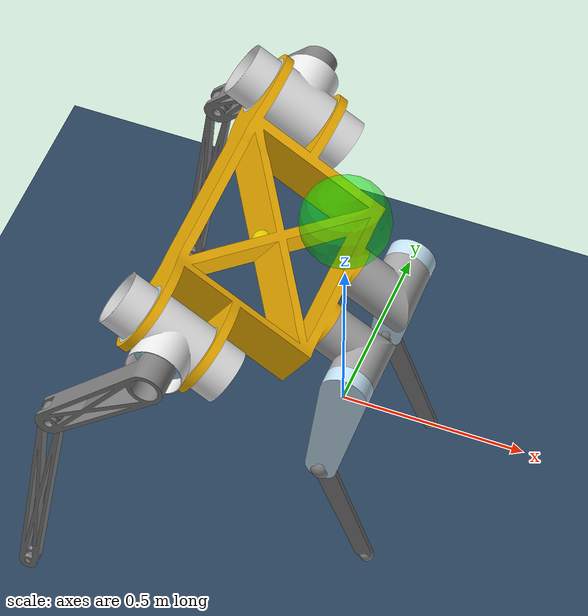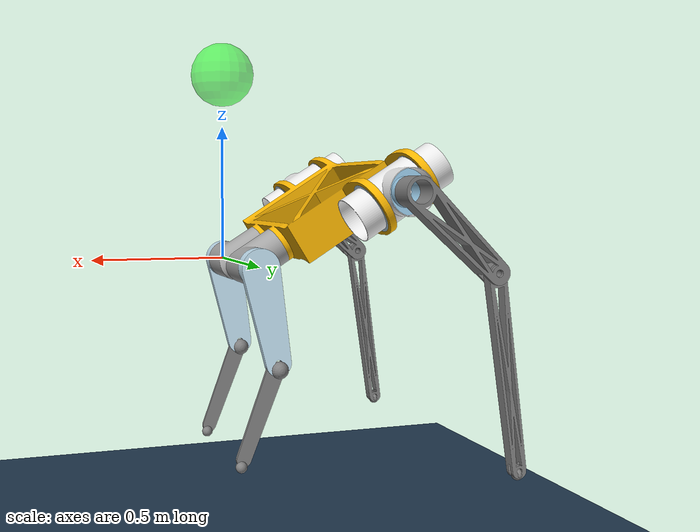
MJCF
<mujoco model="MuJoCo Model">
  <compiler angle="radian" meshdir="assets/"/>

  <option integrator="implicit"/>

  <size memory="4M" nkey="1" nuser_sensor="5"/>

  <visual>
    <global azimuth="160" elevation="-20"/>
    <quality shadowsize="2048"/>
    <headlight ambient="0.3 0.3 0.3" diffuse="0.6 0.6 0.6" specular="0 0 0"/>
    <rgba haze="0.15 0.25 0.35 1"/>
  </visual>

  <default>
    <default class="pterosaur">
      <joint armature="0.005" frictionloss="0.1"/>
      <default class="visual">
        <geom type="mesh" contype="0" conaffinity="0" group="2"/>
      </default>
      <default class="collision">
        <geom group="3"/>
      </default>
      <default class="foot">
        <geom size="0.02 0 0" contype="2" condim="6" priority="1" friction="1.2 0.02 0.01" solimp="0.015 1 0.031"/>
      </default>
    </default>
    <default class="torque">
      <general ctrlrange="-1 1" ctrllimited="true" gainprm="40"/>
    </default>
    <default class="task">
      <site size="0.02 0.005 0.005" group="5" rgba="1 0 0 1"/>
      <default class="flight">
        <site size="0.019 0.005 0.005" rgba="1 0.3 0.3 1"/>
      </default>
      <default class="stance">
        <site size="0.018 0.005 0.005" group="4" rgba="0.3 1 0.3 1"/>
      </default>
    </default>
    <default class="prop">
      <geom type="box" rgba="0 0.4 1 1"/>
    </default>
  </default>

  <asset>
    <texture type="2d" colorspace="auto" name="blue_grid" builtin="checker" mark="edge" rgb1="0.02 0.14 0.44" rgb2="0.27 0.55 1" markrgb="1 1 1" width="300" height="300"/>
    <texture type="2d" colorspace="auto" name="grey_grid" builtin="checker" mark="edge" rgb1="0.26 0.26 0.26" rgb2="0.6 0.6 0.6" markrgb="1 1 1" width="300" height="300"/>
    <texture type="skybox" colorspace="auto" name="skybox" builtin="gradient" rgb1="0.66 0.79 1" rgb2="0.9 0.91 0.93" width="800" height="4800"/>
    <texture type="skybox" colorspace="auto" builtin="gradient" rgb1="0.3 0.5 0.7" rgb2="0 0 0" width="512" height="3072"/>
    <texture type="2d" colorspace="auto" name="groundplane" builtin="checker" mark="edge" rgb1="0.2 0.3 0.4" rgb2="0.1 0.2 0.3" markrgb="0.8 0.8 0.8" width="300" height="300"/>
    <material name="blue_grid" texture="blue_grid" texuniform="true" reflectance="0.2"/>
    <material name="grey_grid" texture="grey_grid" texuniform="true" reflectance="0.2"/>
    <material name="self" rgba="0.7 0.5 0.3 1"/>
    <material name="self_default" rgba="0.7 0.5 0.3 1"/>
    <material name="self_highlight" rgba="0 0.5 0.3 1"/>
    <material name="effector" rgba="0.7 0.4 0.2 1"/>
    <material name="effector_default" rgba="0.7 0.4 0.2 1"/>
    <material name="effector_highlight" rgba="0 0.5 0.3 1"/>
    <material name="decoration" rgba="0.2 0.6 0.3 1"/>
    <material name="eye" rgba="0 0.2 1 1"/>
    <material name="target" rgba="0.6 0.3 0.3 1"/>
    <material name="target_default" rgba="0.6 0.3 0.3 1"/>
    <material name="target_highlight" rgba="0.6 0.3 0.3 0.4"/>
    <material name="site" rgba="0.5 0.5 0.5 0.3"/>
    <material name="body_material" rgba="0.980392 0.713725 0.00392157 1"/>
    <material name="housing_bearing_material" rgba="0.768627 0.886275 0.952941 1"/>
    <material name="smaller_housing_material" rgba="0.917647 0.917647 0.917647 1"/>
    <material name="humerus_material" rgba="0.498039 0.498039 0.498039 1"/>
    <material name="bevel_out_material" rgba="0.615686 0.811765 0.929412 1"/>
    <material name="radius_and_ulna_material" rgba="0.498039 0.498039 0.498039 1"/>
    <material name="finger_material" rgba="0.980392 0.713725 0.00392157 1"/>
    <material name="hip_material" rgba="0.647059 0.647059 0.647059 1"/>
    <material name="leg_motor_1_material" rgba="0.615686 0.811765 0.929412 1"/>
    <material name="femur_material" rgba="0.768627 0.886275 0.952941 1"/>
    <material name="leg_motor_3_material" rgba="0.917647 0.917647 0.917647 1"/>
    <material name="leg_motor_2_material" rgba="0.231373 0.380392 0.705882 1"/>
    <material name="tibia_material" rgba="0.498039 0.498039 0.498039 1"/>
    <material name="groundplane" texture="groundplane" texrepeat="5 5" texuniform="true" reflectance="0.2"/>
    <mesh name="femur" file="femur.stl"/>
    <mesh name="hip" file="hip.stl"/>
    <mesh name="housing_bearing" file="housing_bearing.stl"/>
    <mesh name="smaller_housing" file="smaller_housing.stl"/>
    <mesh name="finger" file="finger.stl"/>
    <mesh name="body" file="body.stl"/>
    <mesh name="humerus" file="humerus.stl"/>
    <mesh name="tibia" file="tibia.stl"/>
    <mesh name="radius_and_ulna" file="radius_and_ulna.stl"/>
    <mesh name="bevel_out" file="bevel_out.stl"/>
    <mesh name="leg_motor_2" file="leg_motor_2.stl"/>
    <mesh name="leg_motor_1" file="leg_motor_1.stl"/>
    <mesh name="leg_motor_3" file="leg_motor_3.stl"/>
  </asset>

  <worldbody>
    <geom name="floor" size="0 0 0.05" pos="0 0 -1" type="plane" conaffinity="3" material="groundplane"/>
    <light pos="0 0 3.5" type="directional"/>
    <body name="body" childclass="pterosaur">
      <inertial pos="-0.329162 0.2607 0.205848" quat="0.618511 0.618511 -0.342701 0.342701" mass="21.9159" diaginertia="1.82175 1.36685 0.542959"/>
      <joint name="body_freejoint" type="free" armature="0" frictionloss="0"/>
      <geom name="height_probe_visual" size="0.03" pos="-0.329162 0.2607 0.205848" contype="0" conaffinity="0" group="2" rgba="1 1 0 0.6"/>
      <geom class="visual" pos="-1.16424 0.2607 0.72808" quat="0.618511 -0.342701 -0.342701 0.618511" material="body_material" mesh="body"/>
      <geom class="collision" pos="-1.16424 0.2607 0.72808" quat="0.618511 -0.342701 -0.342701 0.618511" type="mesh" material="body_material" mesh="body"/>
      <geom class="visual" pos="-1.16424 0.2607 0.72808" quat="0.618511 -0.342701 -0.342701 0.618511" material="housing_bearing_material" mesh="housing_bearing"/>
      <geom class="collision" pos="-1.16424 0.2607 0.72808" quat="0.618511 -0.342701 -0.342701 0.618511" type="mesh" material="housing_bearing_material" mesh="housing_bearing"/>
      <geom class="visual" pos="-1.31895 1.12179 0.824836" quat="0.618511 -0.342701 -0.342701 0.618511" material="housing_bearing_material" mesh="housing_bearing"/>
      <geom class="collision" pos="-1.31895 1.12179 0.824836" quat="0.618511 -0.342701 -0.342701 0.618511" type="mesh" material="housing_bearing_material" mesh="housing_bearing"/>
      <geom class="visual" pos="-1.31895 0.2607 0.824836" quat="0.618511 -0.342701 -0.342701 0.618511" material="housing_bearing_material" mesh="housing_bearing"/>
      <geom class="collision" pos="-1.31895 0.2607 0.824836" quat="0.618511 -0.342701 -0.342701 0.618511" type="mesh" material="housing_bearing_material" mesh="housing_bearing"/>
      <geom class="visual" pos="-1.16424 1.12179 0.72808" quat="0.618511 -0.342701 -0.342701 0.618511" material="housing_bearing_material" mesh="housing_bearing"/>
      <geom class="collision" pos="-1.16424 1.12179 0.72808" quat="0.618511 -0.342701 -0.342701 0.618511" type="mesh" material="housing_bearing_material" mesh="housing_bearing"/>
      <site name="com" size="0.001" pos="-0.329162 0.2607 0.205848" rgba="1 0 0 1"/>
      <site name="head" class="task" pos="-0.029162 0.2607 0.205848"/>
      <body name="smaller_housing" pos="-0.342251 -0.169846 0.214034" quat="0.484652 0 0.874707 0">
        <inertial pos="-1.24807e-06 0.00682513 -0.0787398" quat="0.707128 -1.57178e-06 -7.81234e-06 0.707086" mass="1.343" diaginertia="0.013795 0.0135155 0.00927768"/>
        <joint name="leftarm_shoulder1" range="-2.30808 0.293118" limited="true"/>
        <geom class="visual" pos="0.430546 0 -0.969486" quat="0 1 0 0" material="smaller_housing_material" mesh="smaller_housing"/>
        <body name="bevel_out" pos="0 -0.0762 -0.07874" quat="0.0909266 0.0909266 -0.701236 0.701236">
          <inertial pos="-0.0753731 0 0.0347345" quat="0.43073 0.560778 0.560778 0.43073" mass="4.75962" diaginertia="0.0797297 0.0796501 0.0108048"/>
          <joint name="leftarm_shoulder2" range="-1.73025 1.55614" limited="true"/>
          <geom class="visual" pos="0.430546 -0.890746 -0.0762" quat="0.707107 0.707107 0 0" material="humerus_material" mesh="humerus"/>
          <geom class="collision" pos="0.430546 -0.890746 -0.0762" quat="0.707107 0.707107 0 0" type="mesh" material="humerus_material" mesh="humerus"/>
          <geom class="visual" pos="0.430546 -0.890746 -0.0762" quat="0.707107 0.707107 0 0" material="bevel_out_material" mesh="bevel_out"/>
          <body name="radius_and_ulna" pos="-0.381 0 0.1016" quat="0.943004 0 0 0.332781">
            <inertial pos="-0.306294 0 -0.01905" quat="0 0.707107 0 0.707107" mass="1.60866" diaginertia="0.0697199 0.0693551 0.000762134"/>
            <joint name="leftarm_elbow" range="-0.7423 1.53233" limited="true"/>
            <geom class="visual" pos="0.811546 -0.890746 -0.1778" quat="0.707107 0.707107 0 0" material="radius_and_ulna_material" mesh="radius_and_ulna"/>
            <geom class="collision" pos="0.811546 -0.890746 -0.1778" quat="0.707107 0.707107 0 0" type="mesh" material="radius_and_ulna_material" mesh="radius_and_ulna"/>
            <geom name="FL" size="0.02" pos="-0.675 0 -0.02" contype="2" condim="6" priority="1" friction="1 0.02 0.01" solref="0.0067 3"/>
            <site name="FL" size="0.02" pos="-0.675 0 -0.02"/>
          </body>
        </body>
      </body>
      <body name="smaller_housing_2" pos="-0.342251 0.691246 0.214034" quat="0 0.874707 0 0.484652">
        <inertial pos="-1.24807e-06 0.00682513 -0.0787398" quat="0.707128 -1.57178e-06 -7.81234e-06 0.707086" mass="1.343" diaginertia="0.013795 0.0135155 0.00927768"/>
        <joint name="rightarm_shoulder1" range="-0.295388 2.30617" limited="true"/>
        <geom class="visual" pos="0.430546 0 -0.969486" quat="0 1 0 0" material="smaller_housing_material" mesh="smaller_housing"/>
        <body name="bevel_out_2" pos="0 -0.0762 -0.07874" quat="0.707107 -0.707107 0 0">
          <inertial pos="-0.0728804 0.0192235 -0.0347345" quat="0.62822 0.482551 0.371755 0.484027" mass="4.75962" diaginertia="0.0797297 0.0796501 0.0108049"/>
          <joint name="rightarm_shoulder2" range="-1.73159 1.55314" limited="true"/>
          <geom class="visual" pos="0.643487 0.751481 0.0762" quat="0.701236 -0.701236 0.0909266 -0.0909266" material="humerus_material" mesh="humerus"/>
          <geom class="collision" pos="0.643487 0.751481 0.0762" quat="0.701236 -0.701236 0.0909266 -0.0909266" type="mesh" material="humerus_material" mesh="humerus"/>
          <geom class="visual" pos="-0.751481 0.643487 0.0762" quat="0.560144 -0.560144 -0.431554 0.431554" material="bevel_out_material" mesh="bevel_out"/>
          <body name="radius_and_ulna_2" pos="-0.3684 0.0971719 -0.0635" quat="0.977967 0 0 0.208758">
            <inertial pos="-0.306294 0 -0.01905" quat="0 0.707107 0 0.707107" mass="1.60866" diaginertia="0.0697199 0.0693551 0.000762134"/>
            <joint name="rightarm_elbow" range="-0.7369 1.53357" limited="true"/>
            <geom class="visual" pos="0.811546 -0.890746 -0.1778" quat="0.707107 0.707107 0 0" material="radius_and_ulna_material" mesh="radius_and_ulna"/>
            <geom class="collision" pos="0.811546 -0.890746 -0.1778" quat="0.707107 0.707107 0 0" type="mesh" material="radius_and_ulna_material" mesh="radius_and_ulna"/>
            <geom name="FR" size="0.02" pos="-0.675 0 -0.02" contype="2" condim="6" priority="1" friction="1 0.02 0.01" solref="0.0067 3"/>
            <site name="FR" size="0.02" pos="-0.675 0 -0.02"/>
          </body>
        </body>
      </body>
      <body name="leg_motor_1" pos="-0.124306 0.1575 0.0777372" quat="0.618511 -0.342701 -0.342701 0.618511">
        <inertial pos="-0.0085028 -1.1347e-08 -0.0878363" quat="0.704254 0.0634614 0.0634616 0.704252" mass="2.7422" diaginertia="0.0181836 0.0169596 0.00916813"/>
        <joint name="leftleg_hip1" range="-0.327376 0.381876" limited="true"/>
        <geom class="visual" pos="0.1032 0 1.22654" quat="1 0 0 0" material="hip_material" mesh="hip"/>
        <geom class="collision" pos="0.1032 0 1.22654" quat="1 0 0 0" type="mesh" material="hip_material" mesh="hip"/>
        <geom class="visual" pos="0.1032 0 1.22654" quat="1 0 0 0" material="leg_motor_1_material" mesh="leg_motor_1"/>
        <geom class="collision" pos="0.1032 0 1.22654" quat="1 0 0 0" type="mesh" material="leg_motor_1_material" mesh="leg_motor_1"/>
        <body name="leg_motor_2" pos="-0.1075 0 -0.146612" quat="0.399172 -0.583663 -0.399172 0.583663">
          <inertial pos="0.0727822 0 0.0216101" quat="0 0.6709 0 0.741548" mass="3.21492" diaginertia="0.0416266 0.0395144 0.00417972"/>
          <joint name="leftleg_hip2" range="-1.29 1.72115" limited="true"/>
          <geom class="visual" pos="0 -1.37315 -0.2107" quat="0.5 0.5 0.5 -0.5" material="femur_material" mesh="femur"/>
          <geom class="collision" pos="0 -1.37315 -0.2107" quat="0.5 0.5 0.5 -0.5" type="mesh" material="femur_material" mesh="femur"/>
          <geom class="visual" pos="0 -1.37315 -0.2107" quat="0.5 0.5 0.5 -0.5" material="leg_motor_3_material" mesh="leg_motor_3"/>
          <geom class="collision" pos="0 -1.37315 -0.2107" quat="0.5 0.5 0.5 -0.5" type="mesh" material="leg_motor_3_material" mesh="leg_motor_3"/>
          <geom class="visual" pos="0 -1.37315 -0.2107" quat="0.5 0.5 0.5 -0.5" material="leg_motor_2_material" mesh="leg_motor_2"/>
          <geom class="collision" pos="0 -1.37315 -0.2107" quat="0.5 0.5 0.5 -0.5" type="mesh" material="leg_motor_2_material" mesh="leg_motor_2"/>
          <geom name="LK_visual" size="0.03" pos="0.353 0 0.033" rgba="0 1 1 0.3"/>
          <geom name="LK" size="0.03" pos="0.353 0 0.033" contype="2" condim="6" priority="1" friction="1 0.02 0.01" solimp="0.015 1 0.031"/>
          <site name="LK" size="0.03" pos="0.353 0 0.033"/>
          <body name="tibia" pos="0.3302 0 0.03115" quat="0 0.962486 0.271331 0">
            <inertial pos="0.164731 0 -0.00635" quat="0 0.707107 0 0.707107" mass="0.440746" diaginertia="0.00548761 0.00537275 0.000126716"/>
            <joint name="leftleg_knee" range="-1.6531 0.481906" limited="true"/>
            <geom name="HL" class="foot" pos="0.3681 0 0" solref="0.0067 3" solimp="0.9 0.95 0.001"/>
            <geom class="visual" pos="-0.3302 1.37315 0.24185" quat="0.5 -0.5 -0.5 -0.5" material="tibia_material" mesh="tibia"/>
            <geom class="collision" pos="-0.3302 1.37315 0.24185" quat="0.5 -0.5 -0.5 -0.5" type="mesh" material="tibia_material" mesh="tibia"/>
            <site name="RL" size="0.02" pos="0.3681 0 0"/>
          </body>
        </body>
      </body>
      <body name="hip" pos="-0.124306 0.3639 0.0777372" quat="0.618511 -0.342701 -0.342701 0.618511">
        <inertial pos="0.0085028 1.1347e-08 -0.0878363" quat="0.704254 -0.0634614 -0.0634616 0.704252" mass="2.7422" diaginertia="0.0181836 0.0169596 0.00916813"/>
        <joint name="rightleg_hip1" range="-0.328164 0.346007" limited="true"/>
        <geom class="visual" pos="0.1032 0 1.22654" quat="1 0 0 0" material="leg_motor_1_material" mesh="leg_motor_1"/>
        <geom class="collision" pos="0.1032 0 1.22654" quat="1 0 0 0" type="mesh" material="leg_motor_1_material" mesh="leg_motor_1"/>
        <geom class="visual" pos="-0.1032 0 1.22654" quat="0 0 0 1" material="hip_material" mesh="hip"/>
        <geom class="collision" pos="-0.1032 0 1.22654" quat="0 0 0 1" type="mesh" material="hip_material" mesh="hip"/>
        <body name="femur" pos="0.1075 0 -0.146612" quat="0.5 0.5 -0.5 -0.5">
          <inertial pos="-0.0678277 -0.0263943 -0.0216101" quat="-0.13681 0.659383 0.123774 0.728819" mass="3.21492" diaginertia="0.0416266 0.0395144 0.00417975"/>
          <joint name="rightleg_hip2" range="-1.29 1.69754" limited="true"/>
          <geom class="visual" pos="-0.497971 1.27968 0.2107" quat="0.583663 -0.399172 -0.583663 -0.399172" material="leg_motor_2_material" mesh="leg_motor_2"/>
          <geom class="collision" pos="-0.497971 1.27968 0.2107" quat="0.583663 -0.399172 -0.583663 -0.399172" type="mesh" material="leg_motor_2_material" mesh="leg_motor_2"/>
          <geom class="visual" pos="0.497971 -1.27968 0.2107" quat="0.399172 0.583663 -0.399172 0.583663" material="femur_material" mesh="femur"/>
          <geom class="collision" pos="0.497971 -1.27968 0.2107" quat="0.399172 0.583663 -0.399172 0.583663" type="mesh" material="femur_material" mesh="femur"/>
          <geom class="visual" pos="-0.497971 1.27968 0.2107" quat="0.583663 -0.399172 -0.583663 -0.399172" material="leg_motor_3_material" mesh="leg_motor_3"/>
          <geom class="collision" pos="-0.497971 1.27968 0.2107" quat="0.583663 -0.399172 -0.583663 -0.399172" type="mesh" material="leg_motor_3_material" mesh="leg_motor_3"/>
          <geom name="RK_visual" size="0.03" pos="-0.329 -0.128 -0.047" rgba="0 1 1 0.3"/>
          <geom name="RK" size="0.03" pos="-0.329 -0.128 -0.047" contype="2" condim="6" priority="1" friction="1 0.02 0.01" solimp="0.015 1 0.031"/>
          <site name="RK" size="0.03" pos="-0.329 -0.128 -0.047"/>
          <body name="tibia_2" pos="-0.307722 -0.119746 -0.04385" quat="0 0.444243 -0.895906 0">
            <inertial pos="0.164731 0 -0.00635" quat="0 0.707107 0 0.707107" mass="0.440746" diaginertia="0.00548761 0.00537275 0.000126716"/>
            <joint name="rightleg_knee" range="-1.66929 0.456623" limited="true"/>
            <geom name="HR" class="foot" pos="0.3681 0 0" solref="0.0067 3" solimp="0.9 0.95 0.001"/>
            <geom class="visual" pos="-0.3302 -1.37315 -0.25455" quat="0.5 0.5 0.5 -0.5" material="tibia_material" mesh="tibia"/>
            <geom class="collision" pos="-0.3302 -1.37315 -0.25455" quat="0.5 0.5 0.5 -0.5" type="mesh" material="tibia_material" mesh="tibia"/>
            <site name="RR" size="0.02" pos="0.3681 0 0"/>
          </body>
        </body>
      </body>
    </body>
    <body name="goal" pos="0 0 0.7" mocap="true">
      <geom size="0.12" contype="0" conaffinity="0" group="2" rgba="0 1 0 0.5"/>
    </body>
  </worldbody>

  <contact>
    <exclude body1="body" body2="bevel_out"/>
    <exclude body1="body" body2="bevel_out_2"/>
    <exclude body1="body" body2="leg_motor_2"/>
    <exclude body1="body" body2="femur"/>
  </contact>

  <tendon>
    <fixed name="left_shoulder_diff_A">
      <joint joint="leftarm_shoulder2" coef="1"/>
      <joint joint="leftarm_shoulder1" coef="1"/>
    </fixed>
    <fixed name="left_shoulder_diff_B">
      <joint joint="leftarm_shoulder2" coef="1"/>
      <joint joint="leftarm_shoulder1" coef="-1"/>
    </fixed>
    <fixed name="right_shoulder_diff_A">
      <joint joint="rightarm_shoulder2" coef="1"/>
      <joint joint="rightarm_shoulder1" coef="-1"/>
    </fixed>
    <fixed name="right_shoulder_diff_B">
      <joint joint="rightarm_shoulder2" coef="1"/>
      <joint joint="rightarm_shoulder1" coef="1"/>
    </fixed>
  </tendon>

  <actuator>
    <general name="leftarm_shoulder1" class="pterosaur" tendon="left_shoulder_diff_A" ctrlrange="-1 1" ctrllimited="true" forcelimited="true" forcerange="-200 200" biastype="affine" gainprm="200" biasprm="0 0 -10"/>
    <general name="leftarm_shoulder2" class="pterosaur" tendon="left_shoulder_diff_B" ctrlrange="-1 1" ctrllimited="true" forcelimited="true" forcerange="-200 200" biastype="affine" gainprm="200" biasprm="0 0 -10"/>
    <general name="leftarm_elbow" class="pterosaur" joint="leftarm_elbow" ctrlrange="-1 1" ctrllimited="true" forcelimited="true" forcerange="-80 80" biastype="affine" gainprm="80" biasprm="0 0 -4"/>
    <general name="rightarm_shoulder1" class="pterosaur" tendon="right_shoulder_diff_A" ctrlrange="-1 1" ctrllimited="true" forcelimited="true" forcerange="-200 200" biastype="affine" gainprm="200" biasprm="0 0 -10"/>
    <general name="rightarm_shoulder2" class="pterosaur" tendon="right_shoulder_diff_B" ctrlrange="-1 1" ctrllimited="true" forcelimited="true" forcerange="-200 200" biastype="affine" gainprm="200" biasprm="0 0 -10"/>
    <general name="rightarm_elbow" class="pterosaur" joint="rightarm_elbow" ctrlrange="-1 1" ctrllimited="true" forcelimited="true" forcerange="-80 80" biastype="affine" gainprm="80" biasprm="0 0 -4"/>
    <general name="leftleg_hip1" class="pterosaur" joint="leftleg_hip1" ctrlrange="-1 1" ctrllimited="true" forcelimited="true" forcerange="-200 200" biastype="affine" gainprm="200" biasprm="0 0 -10"/>
    <general name="leftleg_hip2" class="pterosaur" joint="leftleg_hip2" ctrlrange="-1 1" ctrllimited="true" forcelimited="true" forcerange="-200 200" biastype="affine" gainprm="200" biasprm="0 0 -10"/>
    <general name="leftleg_knee" class="pterosaur" joint="leftleg_knee" ctrlrange="-1 1" ctrllimited="true" forcelimited="true" forcerange="-80 80" biastype="affine" gainprm="80" biasprm="0 0 -4"/>
    <general name="rightleg_hip1" class="pterosaur" joint="rightleg_hip1" ctrlrange="-1 1" ctrllimited="true" forcelimited="true" forcerange="-200 200" biastype="affine" gainprm="200" biasprm="0 0 -10"/>
    <general name="rightleg_hip2" class="pterosaur" joint="rightleg_hip2" ctrlrange="-1 1" ctrllimited="true" forcelimited="true" forcerange="-200 200" biastype="affine" gainprm="200" biasprm="0 0 -10"/>
    <general name="rightleg_knee" class="pterosaur" joint="rightleg_knee" ctrlrange="-1 1" ctrllimited="true" forcelimited="true" forcerange="-80 80" biastype="affine" gainprm="80" biasprm="0 0 -4"/>
  </actuator>

  <sensor>
    <user dim="3" needstage="acc" datatype="real" name="Upright" user="6 1 0 3 0.05"/>
    <user dim="1" needstage="acc" datatype="real" name="Height" user="6 1 0 3 0.04"/>
    <user dim="3" needstage="acc" datatype="real" name="Position" user="2 0.2 0 0.5 0.1"/>
    <user dim="1" needstage="acc" datatype="real" name="LaunchVelocity" user="0 1 0 0.5 0.1"/>
    <user dim="4" needstage="acc" datatype="real" name="Gait" user="6 0 0 10 0.03"/>
    <user dim="2" needstage="acc" datatype="real" name="Balance" user="2 0.2 0 0.3 0.1"/>
    <user dim="12" needstage="acc" datatype="real" name="Effort" user="0 0.05 0 0.1 0"/>
    <user dim="15" needstage="acc" datatype="real" name="Posture" user="0 0.1 0 1 0"/>
    <user dim="3" needstage="acc" datatype="real" name="Orientation" user="0 0 0 0.03 0"/>
    <user dim="3" needstage="acc" datatype="real" name="Angmom" user="0 0 0 0.03 0"/>
    <user dim="4" needstage="acc" datatype="real" name="GroundContact" user="0 0.5 0 1 0.1"/>
    <user dim="3" needstage="acc" datatype="real" name="RefBasePos" user="0 0 0 20 0"/>
    <user dim="3" needstage="acc" datatype="real" name="RefBaseOri" user="0 0 0 20 0"/>
    <user dim="12" needstage="acc" datatype="real" name="RefJointPos" user="0 0 0 20 0"/>
    <user dim="6" needstage="acc" datatype="real" name="RefBaseVel" user="0 0 0 5 0"/>
    <user dim="12" needstage="acc" datatype="real" name="RefJointVel" user="0 0 0 1 0"/>
    <user dim="6" needstage="acc" datatype="real" name="RefTakeoff" user="0 0 0 10 0"/>
    <user dim="12" needstage="acc" datatype="real" name="Symmetry" user="0 0 0 20 0"/>
    <user dim="6" needstage="acc" datatype="real" name="Clearance" user="0 0 0 50 0"/>
    <framepos objtype="site" objname="com" name="torso_pos"/>
    <framepos objtype="site" objname="FR" name="FR_pos"/>
    <framepos objtype="site" objname="FL" name="FL_pos"/>
    <framepos objtype="site" objname="RR" name="RR_pos"/>
    <framepos objtype="site" objname="RL" name="RL_pos"/>
    <jointpos joint="rightarm_shoulder1" name="pos_FR_hip_joint"/>
    <jointpos joint="rightarm_shoulder2" name="pos_FR_thigh_joint"/>
    <jointpos joint="rightarm_elbow" name="pos_FR_calf_joint"/>
    <jointpos joint="leftarm_shoulder1" name="pos_FL_hip_joint"/>
    <jointpos joint="leftarm_shoulder2" name="pos_FL_thigh_joint"/>
    <jointpos joint="leftarm_elbow" name="pos_FL_calf_joint"/>
    <jointpos joint="rightleg_hip1" name="pos_RR_hip_joint"/>
    <jointpos joint="rightleg_hip2" name="pos_RR_thigh_joint"/>
    <jointpos joint="rightleg_knee" name="pos_RR_calf_joint"/>
    <jointpos joint="leftleg_hip1" name="pos_RL_hip_joint"/>
    <jointpos joint="leftleg_hip2" name="pos_RL_thigh_joint"/>
    <jointpos joint="leftleg_knee" name="pos_RL_calf_joint"/>
    <touch site="FR" name="FR_touch"/>
    <touch site="FL" name="FL_touch"/>
    <touch site="RR" name="RR_touch"/>
    <touch site="RL" name="RL_touch"/>
    <touch site="RK" name="RK_touch"/>
    <touch site="LK" name="LK_touch"/>
    <framepos objtype="site" objname="head" name="trace0"/>
    <subtreecom body="body" name="torso_subtreecom"/>
    <subtreelinvel body="body" name="torso_subtreelinvel"/>
    <subtreelinvel body="body" name="torso_angmom"/>
    <subtreeangmom body="body" name="torso_subtreeangmom"/>
    <contact subtree1="body" geom2="floor" name="to_floor"/>
    <contact subtree1="body" geom2="floor" data="force" reduce="netforce" name="to_grf"/>
    <contact body1="radius_and_ulna" geom2="floor" name="to_hand_l"/>
    <contact body1="radius_and_ulna_2" geom2="floor" name="to_hand_r"/>
    <contact body1="tibia" geom2="floor" name="to_foot_l"/>
    <contact body1="tibia_2" geom2="floor" name="to_foot_r"/>
    <subtreeangmom body="body" name="to_angmom"/>
    <framexaxis objtype="xbody" objname="body" name="to_body_x"/>
    <framepos objtype="xbody" objname="radius_and_ulna" name="to_pos_radius_and_ulna"/>
    <framexaxis objtype="xbody" objname="radius_and_ulna" name="to_x_radius_and_ulna"/>
    <framezaxis objtype="xbody" objname="radius_and_ulna" name="to_z_radius_and_ulna"/>
    <framepos objtype="xbody" objname="radius_and_ulna_2" name="to_pos_radius_and_ulna_2"/>
    <framexaxis objtype="xbody" objname="radius_and_ulna_2" name="to_x_radius_and_ulna_2"/>
    <framezaxis objtype="xbody" objname="radius_and_ulna_2" name="to_z_radius_and_ulna_2"/>
    <framepos objtype="xbody" objname="tibia" name="to_pos_tibia"/>
    <framexaxis objtype="xbody" objname="tibia" name="to_x_tibia"/>
    <framezaxis objtype="xbody" objname="tibia" name="to_z_tibia"/>
    <framepos objtype="xbody" objname="tibia_2" name="to_pos_tibia_2"/>
    <framexaxis objtype="xbody" objname="tibia_2" name="to_x_tibia_2"/>
    <framezaxis objtype="xbody" objname="tibia_2" name="to_z_tibia_2"/>
  </sensor>

  <custom>
    <numeric name="agent_planner" size="1" data="2"/>
    <numeric name="agent_horizon" size="1" data="0.35"/>
    <numeric name="agent_timestep" size="1" data="0.01"/>
    <numeric name="sampling_spline_points" size="1" data="3"/>
    <numeric name="sampling_trajectories" size="1" data="60"/>
    <numeric name="sampling_exploration" size="1" data="0.04"/>
    <numeric name="gradient_spline_points" size="1" data="5"/>
    <numeric name="residual_select_Gait" size="1" data="0"/>
    <numeric name="residual_select_Gait switch" size="1" data="0"/>
    <numeric name="residual_Cadence" size="3" data="2 0 4"/>
    <numeric name="residual_Amplitude" size="3" data="0.06 0 0.2"/>
    <numeric name="residual_Duty ratio" size="3" data="0 0 1"/>
    <numeric name="residual_Walk speed" size="3" data="0 0 4"/>
    <numeric name="residual_Walk turn" size="3" data="0 -2 2"/>
    <numeric name="residual_select_Flip dir" size="1" data="0"/>
    <numeric name="residual_select_Biped type" size="1" data="0"/>
    <numeric name="residual_Heading" size="3" data="0 -3.14 3.14"/>
    <numeric name="residual_Arm posture" size="3" data="0.03 0 1"/>
    <numeric name="residual_Launch speed" size="3" data="5 0 12"/>
    <numeric name="residual_Launch angle" size="3" data="30 0 60"/>
    <numeric name="residual_Ref start" size="3" data="0 0 1.9"/>
    <numeric name="residual_Push time" size="3" data="0 0 1.2"/>
    <numeric name="estimator" size="1" data="0"/>
    <numeric name="estimator_sensor_start" size="1" data="19"/>
    <numeric name="estimator_number_sensor" size="1" data="21"/>
    <numeric name="estimator_timestep" size="1" data="0.005"/>
    <numeric name="batch_configuration_length" size="1" data="3"/>
    <numeric name="batch_scale_prior" size="1" data="0.001"/>
    <numeric name="launch_ref_takeoff" size="1" data="1.94"/>
    <numeric name="launch_ref_hands_contact" size="261" data="1 1 1 1 1 1 1 1 1 1 1 1 1 1 1 1 1 1 1 1 1 1 1 1 1 1 1 1 1 1 1 1 1 1 1 1 1 1 1 1 1 1 1 1 1 1 1 1 1 1 1 1 1 1 1 1 1 1 1 1 1 1 1 1 1 1 1 1 1 1 1 1 1 1 1 1 1 1 1 1 1 1 1 1 1 1 1 1 1 1 1 1 1 1 1 1 1 1 1 1 1 1 1 1 1 1 1 1 1 1 1 1 1 1 1 1 1 1 1 1 1 1 1 1 1 1 1 1 1 1 1 1 1 1 1 1 1 1 1 1 1 1 1 1 1 1 1 1 1 1 1 1 1 1 1 1 1 1 1 1 1 1 1 1 1 1 1 1 1 1 1 1 1 1 1 1 1 1 1 1 1 1 1 1 1 1 1 1 1 1 1 1 1 1 0 0 0 0 0 0 0 0 0 0 0 0 0 0 0 0 0 0 0 0 0 0 0 0 0 0 0 0 0 0 0 0 0 0 0 0 0 0 0 0 0 0 0 0 0 0 0 0 0 0 0 0 0 0 0 0 0 0 0 0 0 0 0 0 0 0 0"/>
    <numeric name="launch_ref_feet_contact" size="261" data="1 1 1 1 1 1 1 1 1 1 1 1 1 1 1 1 1 1 1 1 1 1 1 1 1 1 1 1 1 1 1 1 1 1 1 1 1 1 1 1 1 1 1 1 1 1 1 1 1 1 1 1 1 1 1 1 1 1 1 1 1 1 1 1 1 1 1 1 1 1 1 1 1 1 1 1 1 1 1 1 1 1 1 1 1 1 1 1 1 1 1 1 1 1 1 1 1 1 1 1 1 1 1 1 1 1 1 1 1 1 1 1 1 1 1 1 1 1 1 1 1 1 1 1 1 1 1 1 1 1 1 1 1 1 1 1 1 1 1 1 1 1 1 1 1 1 1 1 1 1 1 1 1 1 1 1 1 1 1 0 0 0 0 0 0 0 0 0 0 0 0 0 0 0 0 0 0 0 0 0 0 0 0 0 0 0 0 0 0 0 0 0 0 0 0 0 0 0 0 0 0 0 0 0 0 0 0 0 0 0 0 0 0 0 0 0 0 0 0 0 0 0 0 0 0 0 0 0 0 0 0 0 0 0 0 0 0 0 0 0 0 0 0 0 0 0 0 0 0 0 0 0 0 0 0 0 0 0 0 0 0"/>
    <text name="task_transition" data="Quadruped|Biped|Walk|Scramble|Flip|Launch|Launch Track"/>
    <text name="residual_list_Gait" data="Stand|Walk|Trot|Canter|Gallop"/>
    <text name="residual_list_Gait switch" data="Manual|Automatic"/>
    <text name="residual_list_Flip dir" data="Back Flip|Front Flip"/>
    <text name="residual_list_Biped type" data="Foot Stand|Hand Stand"/>
  </custom>

  <keyframe>
    <key name="launch_start" qpos="0.841664 0 -0.581633 0.992063 0 -0.125738 0 -0.00907562 -1.35206 1.20294 0.00608408 -1.35332 1.20417 0.0153576 -1.26596 -1.3531 0.0164834 -1.27388 -1.36929"/>
  </keyframe>
</mujoco>
